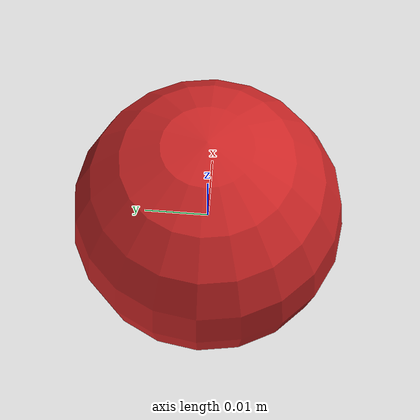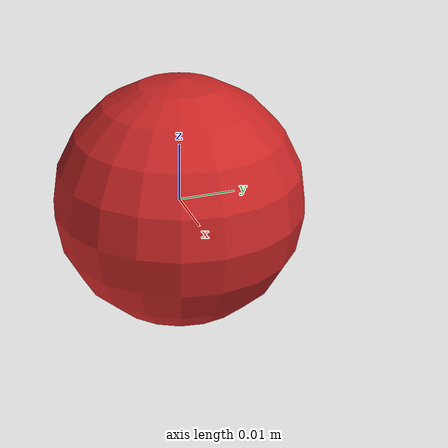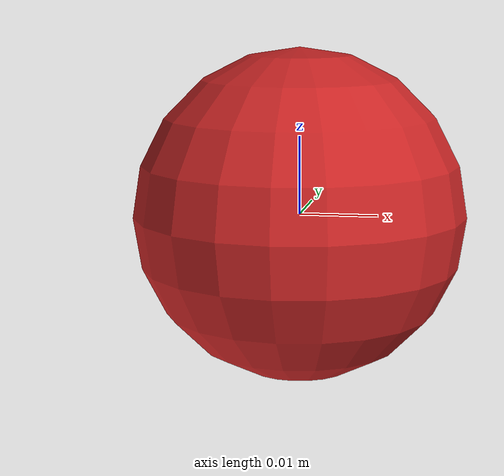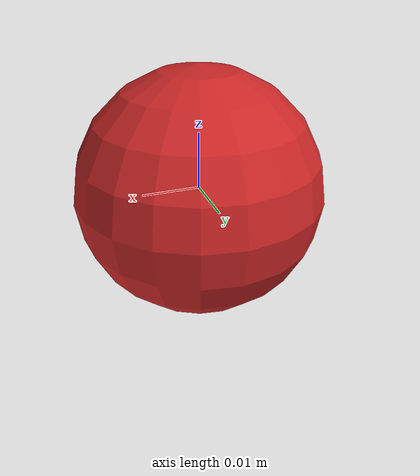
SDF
<?xml version='1.0'?>
<sdf version='1.6'>

  <model name='vsss_ball'>
    <link name='ball'>

      <pose frame=''>0 0 0 0 0 0</pose>
      <self_collide>0</self_collide>
      <enable_wind>0</enable_wind>
      <kinematic>0</kinematic>
      <gravity>1</gravity>

      <inertial>
        <mass>0.04593</mass>
        <pose frame=''>0 0 0 0 0 0</pose>
        <inertia>
          <ixx>0.000008363</ixx>
          <iyy>0.000008363</iyy>
          <izz>0.000008363</izz>
          <ixy>0</ixy>
          <ixz>0</ixz>
          <iyz>0</iyz>
        </inertia>
      </inertial>

      <visual name='visual'>
        <pose frame=''>0 0 0 0 0 0</pose>
        <geometry>
          <sphere>
            <radius>0.021335</radius>
          </sphere>
        </geometry>

        <material>
          <script>
            <uri>file://media/materials/scripts/gazebo.material</uri>
            <name>Gazebo/RedBright</name>
          </script>
        </material>
        <transparency>0</transparency>
        <cast_shadows>1</cast_shadows>
      </visual>

      <collision name='collision'>
        <laser_retro>0</laser_retro>
        <max_contacts>10</max_contacts>
        <pose frame=''>0 0 0 0 0 0</pose>

        <geometry>
          <sphere>
            <radius>0.021335</radius>
          </sphere>
        </geometry>
        <surface>

          <friction>
            <ode>
              <mu>0.5</mu>
              <mu2>0.5</mu2>
              <fdir1>0 0 0</fdir1>
              <slip1>0</slip1>
              <slip2>0</slip2>
            </ode>
            <torsional>
              <coefficient>1</coefficient>
              <patch_radius>0.05</patch_radius>
              <surface_radius>0</surface_radius>
              <use_patch_radius>1</use_patch_radius>
              <ode>
                <slip>0</slip>
              </ode>
            </torsional>
          </friction>

          <bounce>
            <!-- There's 3 parameters that must be set to enable bouncing. restitution_coefficient must be greater than 0, the bounce threshold must be small, and max_vel must be greater than zero. -->
            <restitution_coefficient>0.05</restitution_coefficient>
            <threshold>10</threshold>
          </bounce>

          <contact>
            <collide_without_contact>0</collide_without_contact>
            <collide_without_contact_bitmask>1</collide_without_contact_bitmask>
            <collide_bitmask>1</collide_bitmask>
            <ode>
              <soft_cfm>0</soft_cfm>
              <soft_erp>0.2</soft_erp>
              <kp>1e+13</kp>
              <kd>1</kd>
              <max_vel>0.01</max_vel>
              <min_depth>0</min_depth>
            </ode>
            <bullet>
              <split_impulse>1</split_impulse>
              <split_impulse_penetration_threshold>-0.01</split_impulse_penetration_threshold>
              <soft_cfm>0</soft_cfm>
              <soft_erp>0.2</soft_erp>
              <kp>1e+13</kp>
              <kd>1</kd>
            </bullet>
          </contact>

        </surface>
      </collision>
    </link>
    <static>0</static>
    <allow_auto_disable>1</allow_auto_disable>

  </model>
</sdf>
